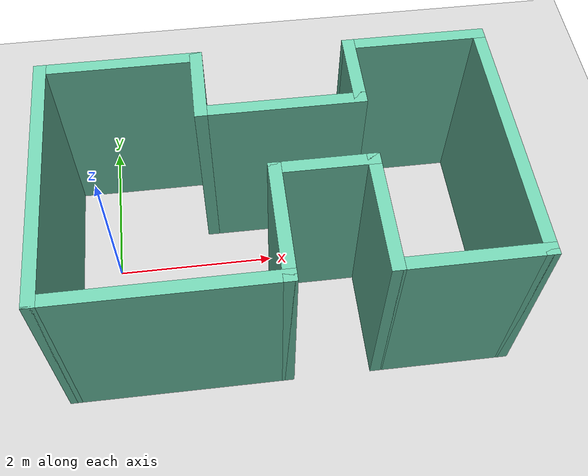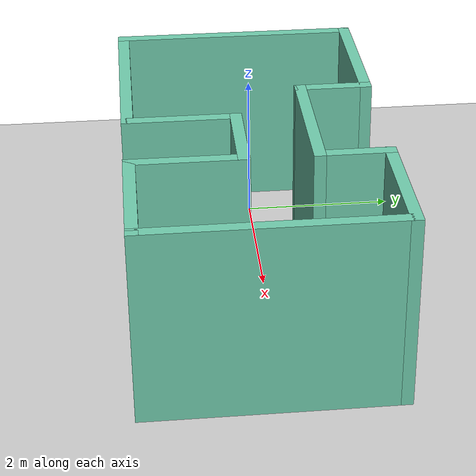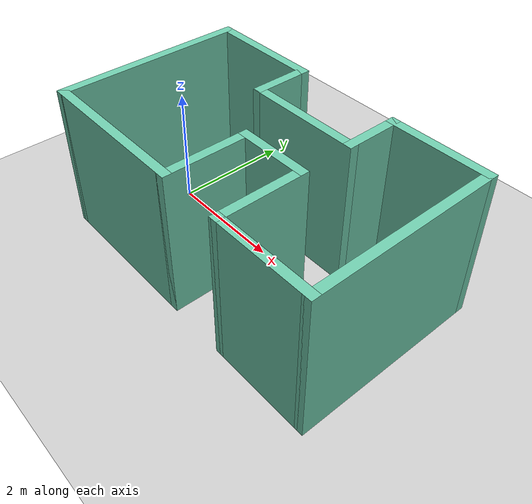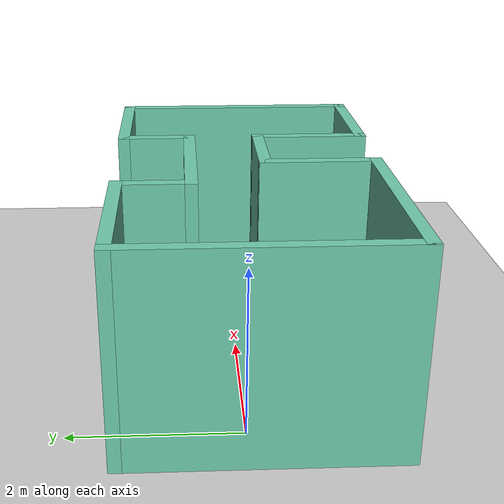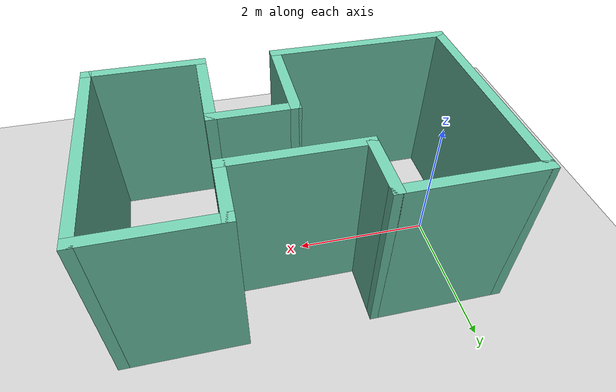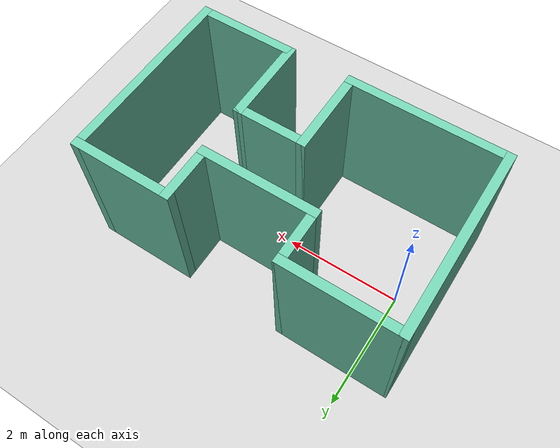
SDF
<sdf version="1.6">
 <world name="default">
  <light name="sun" type="directional">
   <pose>0 0 10 0 -0 0</pose>
   <diffuse>0.8 0.8 0.8 1</diffuse>
   <specular>0.2 0.2 0.2 1</specular>
   <attenuation>
    <range>1000</range>
    <constant>0.9</constant>
    <linear>0.01</linear>
    <quadratic>0.001</quadratic>
   </attenuation>
   <direction>-0.5 0.1 -0.9</direction>
  </light>
  <model name="ground_plane">
   <static>1</static>
   <link name="link">
    <collision name="collision">
     <geometry><plane><normal>0 0 1</normal><size>100 100</size></plane></geometry>
     <surface>
      <contact><collide_bitmask>65535</collide_bitmask></contact>
      <friction><ode><mu>100</mu><mu2>50</mu2></ode></friction>
     </surface>
    </collision>
    <visual name="visual">
     <cast_shadows>0</cast_shadows>
     <geometry><plane><normal>0 0 1</normal><size>100 100</size></plane></geometry>
     <material>
      <script><uri>file://media/materials/scripts/gazebo.material</uri><name>Gazebo/Grey</name></script>
     </material>
    </visual>
   </link>
  </model>
  <gravity>0 0 -9.8</gravity>
  <magnetic_field>6e-06 2.3e-05 -4.2e-05</magnetic_field>
  <atmosphere type="adiabatic"/>
  <physics name="default_physics" default="0" type="ode">
   <max_step_size>0.001</max_step_size>
   <real_time_factor>1</real_time_factor>
   <real_time_update_rate>1000</real_time_update_rate>
  </physics>
  <scene><ambient>0.4 0.4 0.4 1</ambient><background>0.7 0.7 0.7 1</background><shadows>1</shadows></scene>
  <spherical_coordinates>
   <surface_model>EARTH_WGS84</surface_model>
   <latitude_deg>0</latitude_deg>
   <longitude_deg>0</longitude_deg>
   <elevation>0</elevation>
   <heading_deg>0</heading_deg>
  </spherical_coordinates>
  <model name="Small.model">
   <pose>2.07602 -0.142616 0 0 -0 0</pose>
   <link name="Wall_10">
    <collision name="Wall_10_Collision">
     <geometry><box><size>1.5 0.15 2.5</size></box></geometry>
     <pose>0 0 1.25 0 -0 0</pose>
    </collision>
    <visual name="Wall_10_Visual">
     <pose>0 0 1.25 0 -0 0</pose>
     <geometry><box><size>1.5 0.15 2.5</size></box></geometry>
     <material>
      <script><uri>file://media/materials/scripts/gazebo.material</uri><name>Gazebo/Grey</name></script>
      <ambient>0.435294 0.796078 0.67451 1</ambient>
     </material>
     <meta><layer>0</layer></meta>
    </visual>
    <pose>-0.05 -0.875 0 0 -0 1.5708</pose>
   </link>
   <link name="Wall_11">
    <collision name="Wall_11_Collision">
     <geometry><box><size>1.25 0.15 2.5</size></box></geometry>
     <pose>0 0 1.25 0 -0 0</pose>
    </collision>
    <visual name="Wall_11_Visual">
     <pose>0 0 1.25 0 -0 0</pose>
     <geometry><box><size>1.25 0.15 2.5</size></box></geometry>
     <material>
      <script><uri>file://media/materials/scripts/gazebo.material</uri><name>Gazebo/Grey</name></script>
      <ambient>0.435294 0.796078 0.67451 1</ambient>
     </material>
     <meta><layer>0</layer></meta>
    </visual>
    <pose>0.5 -0.2 0 0 -0 0</pose>
   </link>
   <link name="Wall_12">
    <collision name="Wall_12_Collision">
     <geometry><box><size>1.5 0.15 2.5</size></box></geometry>
     <pose>0 0 1.25 0 -0 0</pose>
    </collision>
    <visual name="Wall_12_Visual">
     <pose>0 0 1.25 0 -0 0</pose>
     <geometry><box><size>1.5 0.15 2.5</size></box></geometry>
     <material>
      <script><uri>file://media/materials/scripts/gazebo.material</uri><name>Gazebo/Grey</name></script>
      <ambient>0.435294 0.796078 0.67451 1</ambient>
     </material>
     <meta><layer>0</layer></meta>
    </visual>
    <pose>1.05 -0.875 0 0 0 -1.5708</pose>
   </link>
   <link name="Wall_13">
    <collision name="Wall_13_Collision">
     <geometry><box><size>1.75 0.15 2.5</size></box></geometry>
     <pose>0 0 1.25 0 -0 0</pose>
    </collision>
    <visual name="Wall_13_Visual">
     <pose>0 0 1.25 0 -0 0</pose>
     <geometry><box><size>1.75 0.15 2.5</size></box></geometry>
     <material>
      <script><uri>file://media/materials/scripts/gazebo.material</uri><name>Gazebo/Grey</name></script>
      <ambient>0.435294 0.796078 0.67451 1</ambient>
     </material>
     <meta><layer>0</layer></meta>
    </visual>
    <pose>1.85 -1.55 0 0 -0 0</pose>
   </link>
   <link name="Wall_14">
    <collision name="Wall_14_Collision">
     <geometry><box><size>3.25 0.15 2.5</size></box></geometry>
     <pose>0 0 1.25 0 -0 0</pose>
    </collision>
    <visual name="Wall_14_Visual">
     <pose>0 0 1.25 0 -0 0</pose>
     <geometry><box><size>3.25 0.15 2.5</size></box></geometry>
     <material>
      <script><uri>file://media/materials/scripts/gazebo.material</uri><name>Gazebo/Grey</name></script>
      <ambient>0.435294 0.796078 0.67451 1</ambient>
     </material>
     <meta><layer>0</layer></meta>
    </visual>
    <pose>2.65 0 0 0 -0 1.5708</pose>
   </link>
   <link name="Wall_15">
    <collision name="Wall_15_Collision">
     <geometry><box><size>1.75 0.15 2.5</size></box></geometry>
     <pose>0 0 1.25 0 -0 0</pose>
    </collision>
    <visual name="Wall_15_Visual">
     <pose>0 0 1.25 0 -0 0</pose>
     <geometry><box><size>1.75 0.15 2.5</size></box></geometry>
     <material>
      <script><uri>file://media/materials/scripts/gazebo.material</uri><name>Gazebo/Grey</name></script>
      <ambient>0.435294 0.796078 0.67451 1</ambient>
     </material>
     <meta><layer>0</layer></meta>
    </visual>
    <pose>1.85 1.55 0 0 -0 3.14159</pose>
   </link>
   <link name="Wall_16">
    <collision name="Wall_16_Collision">
     <geometry><box><size>1 0.15 2.5</size></box></geometry>
     <pose>0 0 1.25 0 -0 0</pose>
    </collision>
    <visual name="Wall_16_Visual">
     <pose>0 0 1.25 0 -0 0</pose>
     <geometry><box><size>1 0.15 2.5</size></box></geometry>
     <material>
      <script><uri>file://media/materials/scripts/gazebo.material</uri><name>Gazebo/Grey</name></script>
      <ambient>0.435294 0.796078 0.67451 1</ambient>
     </material>
     <meta><layer>0</layer></meta>
    </visual>
    <pose>1.05 1.125 0 0 0 -1.5708</pose>
   </link>
   <link name="Wall_17">
    <collision name="Wall_17_Collision">
     <geometry><box><size>2 0.15 2.5</size></box></geometry>
     <pose>0 0 1.25 0 -0 0</pose>
    </collision>
    <visual name="Wall_17_Visual">
     <pose>0 0 1.25 0 -0 0</pose>
     <geometry><box><size>2 0.15 2.5</size></box></geometry>
     <material>
      <script><uri>file://media/materials/scripts/gazebo.material</uri><name>Gazebo/Grey</name></script>
      <ambient>0.435294 0.796078 0.67451 1</ambient>
     </material>
     <meta><layer>0</layer></meta>
    </visual>
    <pose>0.125 0.7 0 0 -0 3.14159</pose>
   </link>
   <link name="Wall_18">
    <collision name="Wall_18_Collision">
     <geometry><box><size>1 0.15 2.5</size></box></geometry>
     <pose>0 0 1.25 0 -0 0</pose>
    </collision>
    <visual name="Wall_18_Visual">
     <pose>0 0 1.25 0 -0 0</pose>
     <geometry><box><size>1 0.15 2.5</size></box></geometry>
     <material>
      <script><uri>file://media/materials/scripts/gazebo.material</uri><name>Gazebo/Grey</name></script>
      <ambient>0.435294 0.796078 0.67451 1</ambient>
     </material>
     <meta><layer>0</layer></meta>
    </visual>
    <pose>-0.8 1.125 0 0 -0 1.5708</pose>
   </link>
   <link name="Wall_21">
    <collision name="Wall_21_Collision">
     <geometry><box><size>2 0.15 2.5</size></box></geometry>
     <pose>0 0 1.25 0 -0 0</pose>
    </collision>
    <visual name="Wall_21_Visual">
     <pose>0 0 1.25 0 -0 0</pose>
     <geometry><box><size>2 0.15 2.5</size></box></geometry>
     <material>
      <script><uri>file://media/materials/scripts/gazebo.material</uri><name>Gazebo/Grey</name></script>
      <ambient>0.435294 0.796078 0.67451 1</ambient>
     </material>
     <meta><layer>0</layer></meta>
    </visual>
    <pose>-1.725 1.55 0 0 -0 0</pose>
   </link>
   <link name="Wall_8">
    <collision name="Wall_8_Collision">
     <geometry><box><size>3.25 0.15 2.5</size></box></geometry>
     <pose>0 0 1.25 0 -0 0</pose>
    </collision>
    <visual name="Wall_8_Visual">
     <pose>0 0 1.25 0 -0 0</pose>
     <geometry><box><size>3.25 0.15 2.5</size></box></geometry>
     <material>
      <script><uri>file://media/materials/scripts/gazebo.material</uri><name>Gazebo/Grey</name></script>
      <ambient>0.435294 0.796078 0.67451 1</ambient>
     </material>
     <meta><layer>0</layer></meta>
    </visual>
    <pose>-2.65 0 0 0 0 -1.5708</pose>
   </link>
   <link name="Wall_9">
    <collision name="Wall_9_Collision">
     <geometry><box><size>2.75 0.15 2.5</size></box></geometry>
     <pose>0 0 1.25 0 -0 0</pose>
    </collision>
    <visual name="Wall_9_Visual">
     <pose>0 0 1.25 0 -0 0</pose>
     <geometry><box><size>2.75 0.15 2.5</size></box></geometry>
     <material>
      <script><uri>file://media/materials/scripts/gazebo.material</uri><name>Gazebo/Grey</name></script>
      <ambient>0.435294 0.796078 0.67451 1</ambient>
     </material>
     <meta><layer>0</layer></meta>
    </visual>
    <pose>-1.35 -1.55 0 0 -0 0</pose>
   </link>
   <static>1</static>
  </model>
 </world>
</sdf>
